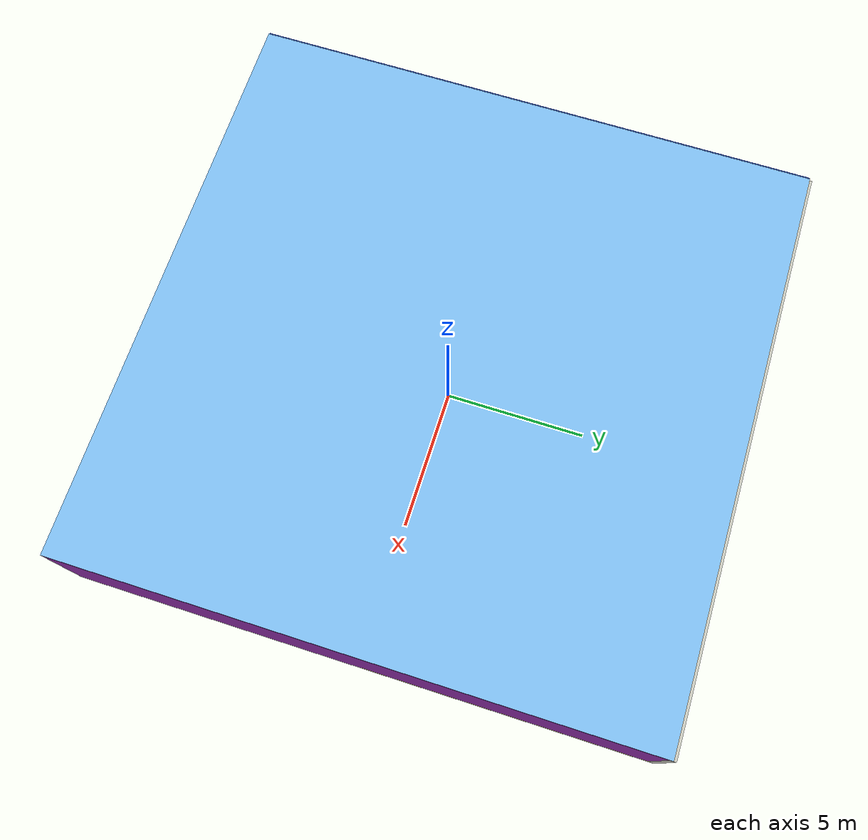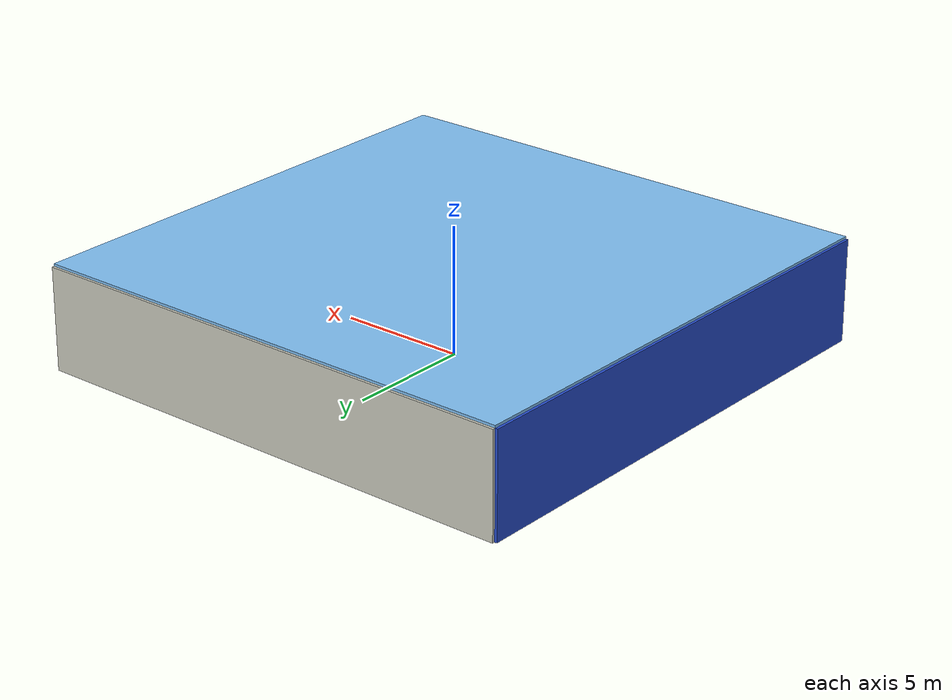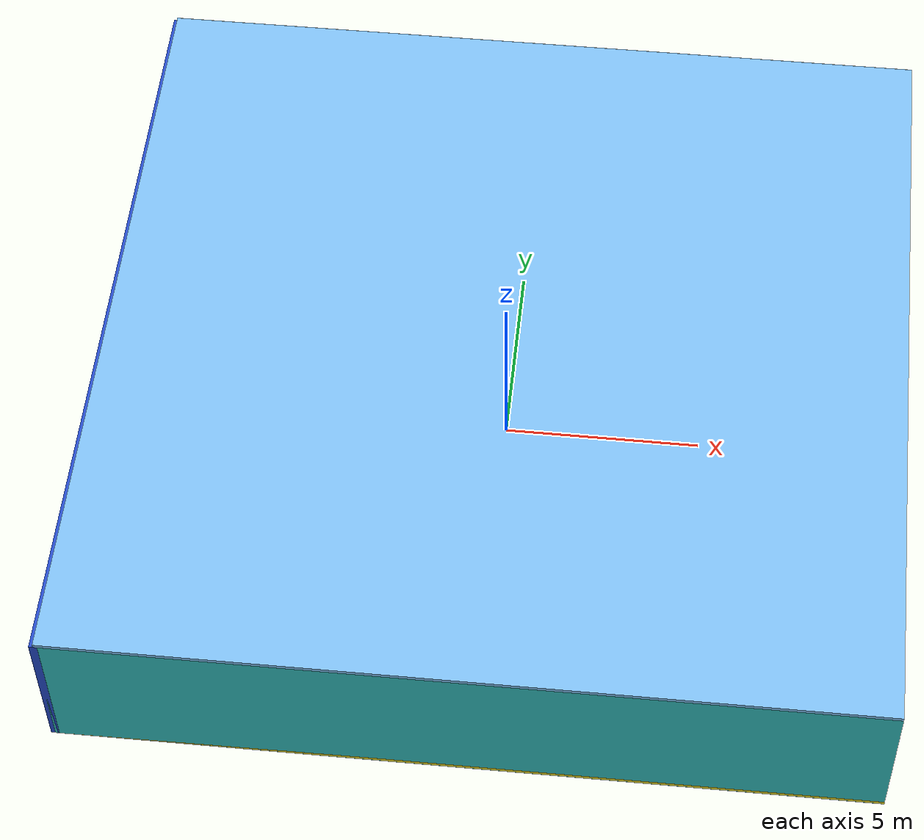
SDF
<sdf version="1.4">
 <world name="default">
  <physics type="ode">
   <max_step_size>0.001</max_step_size>
   <real_time_factor>1</real_time_factor>
   <real_time_update_rate>1000</real_time_update_rate>
   <gravity>0 0 -9.8</gravity>
  </physics>
  <scene><ambient>0.4 0.4 0.4 1</ambient><background>0.7 0.7 0.7 1</background><shadows>1</shadows></scene>
  <model name="Surrounding">
   <static>1</static>
   <link name="Ceiling">
    <collision name="Ceiling_Collision"><geometry><box><size>20 20 0.1</size></box></geometry></collision>
    <visual name="Ceiling_Visual">
     <geometry><box><size>20 20 0.1</size></box></geometry>
     <material>
      <script><uri>file://media/materials/scripts/gazebo.material</uri><name>Gazebo/SkyBlue</name></script>
     </material>
    </visual>
    <pose>0 0 4.05 0 0 0</pose>
   </link>
   <link name="Wall_South">
    <collision name="Wall_South_Collision">
     <geometry><box><size>20 0 4</size></box></geometry>
     <pose>0 0 2 0 -0 0</pose>
    </collision>
    <visual name="Wall_South_Visual">
     <pose>0 0 2 0 -0 0</pose>
     <geometry><box><size>20 0 4</size></box></geometry>
     <material>
      <script><uri>file://media/materials/scripts/gazebo.material</uri><name>Gazebo/TurquoiseGlow</name></script>
     </material>
    </visual>
    <velocity_decay><linear>0</linear><angular>0</angular></velocity_decay>
    <pose>0 -10 0 0 -0 0</pose>
   </link>
   <link name="Wall_East">
    <collision name="Wall_21_Collision">
     <geometry><box><size>20 0 4</size></box></geometry>
     <pose>0 0 2 0 -0 0</pose>
    </collision>
    <visual name="Wall_21_Visual">
     <pose>0 0 2 0 -0 0</pose>
     <geometry><box><size>20 0 4</size></box></geometry>
     <material>
      <script><uri>file://media/materials/scripts/gazebo.material</uri><name>Gazebo/Purple</name></script>
     </material>
    </visual>
    <velocity_decay><linear>0</linear><angular>0</angular></velocity_decay>
    <pose>10 0 0 0 -0 1.5708</pose>
   </link>
   <link name="Wall_North">
    <collision name="Wall_22_Collision">
     <geometry><box><size>20 0.2 4</size></box></geometry>
     <pose>0 0 2 0 -0 0</pose>
    </collision>
    <visual name="Wall_22_Visual">
     <pose>0 0 2 0 -0 0</pose>
     <geometry><box><size>20 0.2 4</size></box></geometry>
     <material>
      <script><uri>file://media/materials/scripts/gazebo.material</uri><name>Gazebo/PaintedWall</name></script>
     </material>
    </visual>
    <velocity_decay><linear>0</linear><angular>0</angular></velocity_decay>
    <pose>0 10 0 0 -0 0</pose>
   </link>
   <link name="Wall_West">
    <collision name="Wall_23_Collision">
     <geometry><box><size>20 0.2 4</size></box></geometry>
     <pose>0 0 2 0 -0 0</pose>
    </collision>
    <visual name="Wall_23_Visual">
     <pose>0 0 2 0 -0 0</pose>
     <geometry><box><size>20 0.2 4</size></box></geometry>
     <material>
      <script><uri>file://media/materials/scripts/gazebo.material</uri><name>Gazebo/BlueGlow</name></script>
     </material>
    </visual>
    <velocity_decay><linear>0</linear><angular>0</angular></velocity_decay>
    <pose>-10 0 0 0 0 -1.5708</pose>
   </link>
   <link name="Ground_link">
    <collision name="collision">
     <pose>0 0 .05 0 -0 0</pose>
     <geometry><box><size>20 20 0.1</size></box></geometry>
    </collision>
    <visual name="visual">
     <pose>0 0 .05 0 -0 0</pose>
     <geometry><box><size>20 20 0.1</size></box></geometry>
     <material>
      <script><uri>file://media/materials/scripts/gazebo.material</uri><name>Gazebo/Yellow</name></script>
     </material>
    </visual>
   </link>
   <static>1</static>
  </model>
  <spherical_coordinates>
   <surface_model>EARTH_WGS84</surface_model>
   <latitude_deg>0</latitude_deg>
   <longitude_deg>0</longitude_deg>
   <elevation>0</elevation>
   <heading_deg>0</heading_deg>
  </spherical_coordinates>
  <light name="lightball_0" type="diffuse">
   <diffuse>0.8 0.8 0.8 1</diffuse>
   <specular>0.2 0.2 0.2 1</specular>
   <attenuation>
    <range>100</range>
    <constant>0.7</constant>
    <linear>0.01</linear>
    <quadratic>0.001</quadratic>
   </attenuation>
   <direction>-0.5 0.1 -0.9</direction>
   <pose>6.93386151595 -7.32520887763 3.50987414356 0 0 0</pose>
  </light>
  <light name="lightball_1" type="diffuse">
   <diffuse>0.8 0.8 0.8 1</diffuse>
   <specular>0.2 0.2 0.2 1</specular>
   <attenuation>
    <range>100</range>
    <constant>0.7</constant>
    <linear>0.01</linear>
    <quadratic>0.001</quadratic>
   </attenuation>
   <direction>-0.5 0.1 -0.9</direction>
   <pose>-6.64027920697 4.41240398129 1.69266739915 0 0 0</pose>
  </light>
  <light name="lightball_2" type="diffuse">
   <diffuse>0.8 0.8 0.8 1</diffuse>
   <specular>0.2 0.2 0.2 1</specular>
   <attenuation>
    <range>100</range>
    <constant>0.7</constant>
    <linear>0.01</linear>
    <quadratic>0.001</quadratic>
   </attenuation>
   <direction>-0.5 0.1 -0.9</direction>
   <pose>-4.00944601478 -0.114027992166 3.8682417763 0 0 0</pose>
  </light>
  <light name="lightball_3" type="diffuse">
   <diffuse>0.8 0.8 0.8 1</diffuse>
   <specular>0.2 0.2 0.2 1</specular>
   <attenuation>
    <range>100</range>
    <constant>0.7</constant>
    <linear>0.01</linear>
    <quadratic>0.001</quadratic>
   </attenuation>
   <direction>-0.5 0.1 -0.9</direction>
   <pose>4.05623389581 8.71948714349 2.94626717675 0 0 0</pose>
  </light>
  <light name="lightball_4" type="diffuse">
   <diffuse>0.8 0.8 0.8 1</diffuse>
   <specular>0.2 0.2 0.2 1</specular>
   <attenuation>
    <range>100</range>
    <constant>0.7</constant>
    <linear>0.01</linear>
    <quadratic>0.001</quadratic>
   </attenuation>
   <direction>-0.5 0.1 -0.9</direction>
   <pose>5.66664117796 3.40009592267 1.19312673245 0 0 0</pose>
  </light>
  <light name="lightball_5" type="diffuse">
   <diffuse>0.8 0.8 0.8 1</diffuse>
   <specular>0.2 0.2 0.2 1</specular>
   <attenuation>
    <range>100</range>
    <constant>0.7</constant>
    <linear>0.01</linear>
    <quadratic>0.001</quadratic>
   </attenuation>
   <direction>-0.5 0.1 -0.9</direction>
   <pose>7.28377371571 0.961921686428 0.66908041564 0 0 0</pose>
  </light>
  <light name="lightball_6" type="diffuse">
   <diffuse>0.8 0.8 0.8 1</diffuse>
   <specular>0.2 0.2 0.2 1</specular>
   <attenuation>
    <range>100</range>
    <constant>0.7</constant>
    <linear>0.01</linear>
    <quadratic>0.001</quadratic>
   </attenuation>
   <direction>-0.5 0.1 -0.9</direction>
   <pose>-1.13125794227 -0.448429634476 1.74348278547 0 0 0</pose>
  </light>
  <light name="lightball_7" type="diffuse">
   <diffuse>0.8 0.8 0.8 1</diffuse>
   <specular>0.2 0.2 0.2 1</specular>
   <attenuation>
    <range>100</range>
    <constant>0.7</constant>
    <linear>0.01</linear>
    <quadratic>0.001</quadratic>
   </attenuation>
   <direction>-0.5 0.1 -0.9</direction>
   <pose>0.141105233667 -8.16536765725 0.831810366461 0 0 0</pose>
  </light>
  <light name="lightball_8" type="diffuse">
   <diffuse>0.8 0.8 0.8 1</diffuse>
   <specular>0.2 0.2 0.2 1</specular>
   <attenuation>
    <range>100</range>
    <constant>0.7</constant>
    <linear>0.01</linear>
    <quadratic>0.001</quadratic>
   </attenuation>
   <direction>-0.5 0.1 -0.9</direction>
   <pose>4.86255472358 -2.62318160339 1.89008824956 0 0 0</pose>
  </light>
  <light name="lightball_9" type="diffuse">
   <diffuse>0.8 0.8 0.8 1</diffuse>
   <specular>0.2 0.2 0.2 1</specular>
   <attenuation>
    <range>100</range>
    <constant>0.7</constant>
    <linear>0.01</linear>
    <quadratic>0.001</quadratic>
   </attenuation>
   <direction>-0.5 0.1 -0.9</direction>
   <pose>-6.45614054265 9.91081167336 1.69259304591 0 0 0</pose>
  </light>
  <light name="lightball_10" type="diffuse">
   <diffuse>0.8 0.8 0.8 1</diffuse>
   <specular>0.2 0.2 0.2 1</specular>
   <attenuation>
    <range>100</range>
    <constant>0.7</constant>
    <linear>0.01</linear>
    <quadratic>0.001</quadratic>
   </attenuation>
   <direction>-0.5 0.1 -0.9</direction>
   <pose>-8.47423588644 -8.91873425983 2.17445811327 0 0 0</pose>
  </light>
  <light name="lightball_11" type="diffuse">
   <diffuse>0.8 0.8 0.8 1</diffuse>
   <specular>0.2 0.2 0.2 1</specular>
   <attenuation>
    <range>100</range>
    <constant>0.7</constant>
    <linear>0.01</linear>
    <quadratic>0.001</quadratic>
   </attenuation>
   <direction>-0.5 0.1 -0.9</direction>
   <pose>2.1096794588 -5.84906512225 1.3267210356 0 0 0</pose>
  </light>
  <include>
   <uri>model://robocup_3Dsim_goal</uri>
   <pose>1.73862732344 -8.21451468208 0 0 0 0.405434963331</pose>
  </include>
  <include><uri>model://table</uri><pose>1.21081143862 0.80123587897 0 0 0 2.67441002</pose></include>
  <include>
   <uri>model://textured_shapes</uri>
   <pose>5.15379308638 5.10351551891 0 0 0 0.0832268205882</pose>
  </include>
  <include><uri>model://cabinet</uri><pose>5.00269696321 6.73095820978 0 0 0 2.32335878824</pose></include>
  <include>
   <uri>model://robocup_3Dsim_goal</uri>
   <pose>7.62785864863 -7.43007436184 0 0 0 2.88992742736</pose>
  </include>
  <include>
   <uri>model://robocup_3Dsim_goal</uri>
   <pose>7.85460347856 -4.63968441954 0 0 0 3.04227121514</pose>
  </include>
  <include><uri>model://table</uri><pose>8.20158291836 7.16597641479 0 0 0 1.31849947931</pose></include>
 </world>
</sdf>

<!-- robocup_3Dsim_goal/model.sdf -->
<sdf version="1.5">
  <model name="robocup_3d_goal">
    <static>true</static>
    <link name="left_post">
      <pose>0 1.05 0.45 0 0 0</pose>
      <collision name="collision">
        <geometry>
          <cylinder>
            <radius>0.05</radius>
            <length>0.9</length>
          </cylinder>
        </geometry>
      </collision>
      <visual name="visual">
        <geometry>
          <cylinder>
            <radius>0.05</radius>
            <length>0.9</length>
          </cylinder>
        </geometry>
        <material>
          <script>
            <uri>file://media/materials/scripts/gazebo.material</uri>
            <name>Gazebo/ZincYellow</name>
          </script>
        </material>
      </visual>
    </link>
    <link name="left_support_horiz_lower">
      <pose>0.30 1.05 0.01 0 0 0</pose>
      <collision name="collision">
        <geometry>
          <box>
            <size>0.50 0.02 0.02</size>
          </box>
        </geometry>
      </collision>
      <visual name="visual">
        <geometry>
          <box>
            <size>0.50 0.02 0.02</size>
          </box>
        </geometry>
        <material>
          <script>
            <uri>file://media/materials/scripts/gazebo.material</uri>
            <name>Gazebo/White</name>
          </script>
        </material>
      </visual>
    </link>
    <link name="left_support_horiz_upper">
      <pose>0.30 1.05 0.79 0 0 0</pose>
      <collision name="collision">
        <geometry>
          <box>
            <size>0.50 0.02 0.02</size>
          </box>
        </geometry>
      </collision>
      <visual name="visual">
        <geometry>
          <box>
            <size>0.50 0.02 0.02</size>
          </box>
        </geometry>
        <material>
          <script>
            <uri>file://media/materials/scripts/gazebo.material</uri>
            <name>Gazebo/White</name>
          </script>
        </material>
      </visual>
    </link>
    <link name="left_support_vertical">
      <pose>0.56 1.05 0.4 0 1.5708 0</pose>
      <collision name="collision">
        <geometry>
          <box>
            <size>0.80 0.02 0.02</size>
          </box>
        </geometry>
      </collision>
      <visual name="visual">
        <geometry>
          <box>
            <size>0.80 0.02 0.02</size>
          </box>
        </geometry>
        <material>
          <script>
            <uri>file://media/materials/scripts/gazebo.material</uri>
            <name>Gazebo/White</name>
          </script>
        </material>
      </visual>
    </link>
    <link name="right_support_horiz_lower">
      <pose>0.30 -1.05 0.01 0 0 0</pose>
      <collision name="collision">
        <geometry>
          <box>
            <size>0.50 0.02 0.02</size>
          </box>
        </geometry>
      </collision>
      <visual name="visual">
        <geometry>
          <box>
            <size>0.50 0.02 0.02</size>
          </box>
        </geometry>
        <material>
          <script>
            <uri>file://media/materials/scripts/gazebo.material</uri>
            <name>Gazebo/White</name>
          </script>
        </material>
      </visual>
    </link>
    <link name="right_support_horiz_upper">
      <pose>0.30 -1.05 0.79 0 0 0</pose>
      <collision name="collision">
        <geometry>
          <box>
            <size>0.50 0.02 0.02</size>
          </box>
        </geometry>
      </collision>
      <visual name="visual">
        <geometry>
          <box>
            <size>0.50 0.02 0.02</size>
          </box>
        </geometry>
        <material>
          <script>
            <uri>file://media/materials/scripts/gazebo.material</uri>
            <name>Gazebo/White</name>
          </script>
        </material>
      </visual>
    </link>
    <link name="right_support_vertical">
      <pose>0.56 -1.05 0.4 0 1.5708 0</pose>
      <collision name="collision">
        <geometry>
          <box>
            <size>0.80 0.02 0.02</size>
          </box>
        </geometry>
      </collision>
      <visual name="visual">
        <geometry>
          <box>
            <size>0.80 0.02 0.02</size>
          </box>
        </geometry>
        <material>
          <script>
            <uri>file://media/materials/scripts/gazebo.material</uri>
            <name>Gazebo/White</name>
          </script>
        </material>
      </visual>
    </link>
    <link name="center_support_horiz_lower">
      <pose>0.56 0 0.01 0 1.5708 0</pose>
      <collision name="collision">
        <geometry>
          <box>
            <size>0.02 2.08 0.02</size>
          </box>
        </geometry>
      </collision>
      <visual name="visual">
        <geometry>
          <box>
            <size>0.02 2.08 0.02</size>
          </box>
        </geometry>
        <material>
          <script>
            <uri>file://media/materials/scripts/gazebo.material</uri>
            <name>Gazebo/White</name>
          </script>
        </material>
      </visual>
    </link>
    <link name="center_support_horiz_upper">
      <pose>0.56 0 0.79 0 1.5708 0</pose>
      <collision name="collision">
        <geometry>
          <box>
            <size>0.02 2.08 0.02</size>
          </box>
        </geometry>
      </collision>
      <visual name="visual">
        <geometry>
          <box>
            <size>0.02 2.08 0.02</size>
          </box>
        </geometry>
        <material>
          <script>
            <uri>file://media/materials/scripts/gazebo.material</uri>
            <name>Gazebo/White</name>
          </script>
        </material>
      </visual>
    </link>
    <link name="right_post">
      <pose>0 -1.05 0.45 0 0 0</pose>
      <collision name="collision">
        <geometry>
          <cylinder>
            <radius>0.05</radius>
            <length>0.9</length>
          </cylinder>
        </geometry>
      </collision>
      <visual name="visual">
        <geometry>
          <cylinder>
            <radius>0.05</radius>
            <length>0.9</length>
          </cylinder>
        </geometry>
        <material>
          <script>
            <uri>file://media/materials/scripts/gazebo.material</uri>
            <name>Gazebo/ZincYellow</name>
          </script>
        </material>
      </visual>
    </link>
    <link name="crossbar">
      <pose>0 0 0.85 1.57 1.57 0</pose>
      <collision name="collision">
        <geometry>
          <cylinder>
            <radius>0.05</radius>
            <length>2.0</length>
          </cylinder>
        </geometry>
      </collision>
      <visual name="visual">
        <geometry>
          <cylinder>
            <radius>0.05</radius>
            <length>2.0</length>
          </cylinder>
        </geometry>
        <material>
          <script>
            <uri>file://media/materials/scripts/gazebo.material</uri>
            <name>Gazebo/ZincYellow</name>
          </script>
        </material>
      </visual>
    </link>
    <link name="center_net">
      <pose>0.56 0 0.40 0 0 0</pose>
      <collision name="collision">
        <geometry>
          <box>
            <size>0.01 2.1 0.80</size>
          </box>
        </geometry>
      </collision>
      <visual name="visual">
        <geometry>
          <box>
            <size>0.01 2.1 0.80</size>
          </box>
        </geometry>
        <material>
          <script>
            <uri>model://../model_source/models/robocup09_spl_field/materials/scripts/</uri>
            <uri>model://../model_source/models/robocup09_spl_field/materials/textures/</uri>
            <name>RoboCup/Net</name>
          </script>
        </material>
      </visual>
    </link>
    <link name="left_net">
      <pose>0.30 1.05 0.40 0 0 0</pose>
      <collision name="collision">
        <geometry>
          <box>
            <size>0.50 0.01 0.76</size>
          </box>
        </geometry>
      </collision>
      <visual name="visual">
        <geometry>
          <box>
            <size>0.50 0.01 0.76</size>
          </box>
        </geometry>
        <material>
          <script>
            <uri>model://../model_source/models/robocup09_spl_field/materials/scripts/</uri>
            <uri>model://../model_source/models/robocup09_spl_field/materials/textures/</uri>
            <name>RoboCup/Net</name>
          </script>
        </material>
      </visual>
    </link>
    <link name="right_net">
      <pose>0.30 -1.05 0.40 0 0 0</pose>
      <collision name="collision">
        <geometry>
          <box>
            <size>0.50 0.01 0.76</size>
          </box>
        </geometry>
      </collision>
      <visual name="visual">
        <geometry>
          <box>
            <size>0.50 0.01 0.76</size>
          </box>
        </geometry>
        <material>
          <script>
            <uri>model://../model_source/models/robocup09_spl_field/materials/scripts/</uri>
            <uri>model://../model_source/models/robocup09_spl_field/materials/textures/</uri>
            <name>RoboCup/Net</name>
          </script>
        </material>
      </visual>
    </link>
  </model>
</sdf>

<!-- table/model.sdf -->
<sdf version="1.5">
  <model name="table">
    <static>true</static>
    <link name="link">
      <collision name="surface">
        <pose>0 0 1.0 0 0 0</pose>
        <geometry>
          <box>
            <size>1.5 0.8 0.03</size>
          </box>
        </geometry>
        <surface>
          <friction>
            <ode>
              <mu>0.6</mu>
              <mu2>0.6</mu2>
            </ode>
          </friction>
        </surface>
      </collision>
      <visual name="visual1">
        <pose>0 0 1.0 0 0 0</pose>
        <geometry>
          <box>
            <size>1.5 0.8 0.03</size>
          </box>
        </geometry>
        <material>
          <script>
            <uri>model://media/materials/scripts/gazebo.material</uri>
            <name>Gazebo/Wood</name>
          </script>
        </material>
      </visual>
      <collision name="front_left_leg">
        <pose>0.68 0.38 0.5 0 0 0</pose>
        <geometry>
          <cylinder>
            <radius>0.02</radius>
            <length>1.0</length>
          </cylinder>
        </geometry>
      </collision>
      <visual name="front_left_leg">
        <pose>0.68 0.38 0.5 0 0 0</pose>
        <geometry>
          <cylinder>
            <radius>0.02</radius>
            <length>1.0</length>
          </cylinder>
        </geometry>
        <material>
          <script>
            <uri>model://media/materials/scripts/gazebo.material</uri>
            <name>Gazebo/Grey</name>
          </script>
        </material>
      </visual>
      <collision name="front_right_leg">
        <pose>0.68 -0.38 0.5 0 0 0</pose>
        <geometry>
          <cylinder>
            <radius>0.02</radius>
            <length>1.0</length>
          </cylinder>
        </geometry>
      </collision>
      <visual name="front_right_leg">
        <pose>0.68 -0.38 0.5 0 0 0</pose>
        <geometry>
          <cylinder>
            <radius>0.02</radius>
            <length>1.0</length>
          </cylinder>
        </geometry>
        <material>
          <script>
            <uri>model://media/materials/scripts/gazebo.material</uri>
            <name>Gazebo/Grey</name>
          </script>
        </material>
      </visual>
      <collision name="back_right_leg">
        <pose>-0.68 -0.38 0.5 0 0 0</pose>
        <geometry>
          <cylinder>
            <radius>0.02</radius>
            <length>1.0</length>
          </cylinder>
        </geometry>
      </collision>
      <visual name="back_right_leg">
        <pose>-0.68 -0.38 0.5 0 0 0</pose>
        <geometry>
          <cylinder>
            <radius>0.02</radius>
            <length>1.0</length>
          </cylinder>
        </geometry>
        <material>
          <script>
            <uri>model://media/materials/scripts/gazebo.material</uri>
            <name>Gazebo/Grey</name>
          </script>
        </material>
      </visual>
      <collision name="back_left_leg">
        <pose>-0.68 0.38 0.5 0 0 0</pose>
        <geometry>
          <cylinder>
            <radius>0.02</radius>
            <length>1.0</length>
          </cylinder>
        </geometry>
      </collision>
      <visual name="back_left_leg">
        <pose>-0.68 0.38 0.5 0 0 0</pose>
        <geometry>
          <cylinder>
            <radius>0.02</radius>
            <length>1.0</length>
          </cylinder>
        </geometry>
        <material>
          <script>
            <uri>model://media/materials/scripts/gazebo.material</uri>
            <name>Gazebo/Grey</name>
          </script>
        </material>
      </visual>
    </link>
  </model>
</sdf>

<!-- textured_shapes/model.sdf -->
<sdf version="1.6">
  <model name="textured_shapes">
    <pose>0 0 0.5 0 0 0</pose>
    <link name="box">
      <pose>0 -1.5 0 0 0 0</pose>
      <collision name="collision">
        <geometry>
          <box>
            <size>1 1 1</size>
          </box>
        </geometry>
      </collision>
      <visual name="visual">
        <geometry>
          <box>
            <size>1 1 1</size>
          </box>
        </geometry>
        <material>
          <script>
            <uri>model://../model_source/models/textured_shapes/materials/scripts</uri>
            <uri>model://../model_source/models/textured_shapes/materials/textures</uri>
            <name>TexturedShape/Squares</name>
          </script>
        </material>
      </visual>
    </link>
    <link name="sphere">
      <collision name="collision">
        <geometry>
          <sphere>
            <radius>0.5</radius>
          </sphere>
        </geometry>
      </collision>
      <visual name="visual">
        <geometry>
          <sphere>
            <radius>0.5</radius>
          </sphere>
        </geometry>
        <material>
          <script>
            <uri>model://../model_source/models/textured_shapes/materials/scripts</uri>
            <uri>model://../model_source/models/textured_shapes/materials/textures</uri>
            <name>TexturedShape/Squares</name>
          </script>
        </material>
      </visual>
    </link>
    <link name="cylinder">
      <pose>0 1.5 0 0 0 0</pose>
      <collision name="collision">
        <geometry>
          <cylinder>
            <radius>0.5</radius>
            <length>1</length>
          </cylinder>
        </geometry>
      </collision>
      <visual name="visual">
        <geometry>
          <cylinder>
            <radius>0.5</radius>
            <length>1</length>
          </cylinder>
        </geometry>
        <material>
          <script>
            <uri>model://../model_source/models/textured_shapes/materials/scripts</uri>
            <uri>model://../model_source/models/textured_shapes/materials/textures</uri>
            <name>TexturedShape/Squares</name>
          </script>
        </material>
      </visual>
    </link>
  </model>
</sdf>

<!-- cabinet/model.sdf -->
<sdf version="1.5">
  <model name="cabinet">
    <static>true</static>
    <link name="cabinet_bottom_plate">
      <inertial>
        <pose>0 0 -1 0 0 0</pose>
        <inertia>
          <ixx>2.050000</ixx>
          <ixy>0</ixy>
          <ixz>0</ixz>
          <iyy>2.050000</iyy>
          <iyz>0</iyz>
          <izz>2.050000</izz>
        </inertia>
        <mass>25.000000</mass>
      </inertial>
      <collision name="cabinet_bottom_plate_geom">
        <pose>0 0 0.010000 0 0 0</pose>
        <geometry>
          <box>
            <size>0.450000 0.450000 0.020000</size>
          </box>
        </geometry>
      </collision>
      <visual name="cabinet_bottom_plate_geom_visual">
        <pose>0 0 0.010000 0 0 0</pose>
        <geometry>
          <box>
            <size>0.450000 0.450000 0.020000</size>
          </box>
        </geometry>
        <material>
          <script>
            <uri>model://media/materials/scripts/gazebo.material</uri>
            <name>Gazebo/Wood</name>
          </script>
        </material>
      </visual>
      <collision name="cabinet_bottom_plate_geom_cabinet_back_plate">
        <pose>0.235000 0 0.510000 0 0 0</pose>
        <geometry>
          <box>
            <size>0.020000 0.450000 1.020000</size>
          </box>
        </geometry>
      </collision>
      <visual name="cabinet_bottom_plate_geom_cabinet_back_plate_visual">
        <pose>0.235000 0 0.510000 0 0 0</pose>
        <geometry>
          <box>
            <size>0.020000 0.450000 1.020000</size>
          </box>
        </geometry>
        <material>
          <script>
            <uri>model://media/materials/scripts/gazebo.material</uri>
            <name>Gazebo/Wood</name>
          </script>
        </material>
      </visual>
      <collision name="cabinet_bottom_plate_geom_cabinet_left_plate">
        <pose>0 0.235000 0.510000 0 0 0</pose>
        <geometry>
          <box>
            <size>0.450000 0.020000 1.020000</size>
          </box>
        </geometry>
      </collision>
      <visual name="cabinet_bottom_plate_geom_cabinet_left_plate_visual">
        <pose>0 0.235000 0.510000 0 0 0</pose>
        <geometry>
          <box>
            <size>0.450000 0.020000 1.020000</size>
          </box>
        </geometry>
        <material>
          <script>
            <uri>model://media/materials/scripts/gazebo.material</uri>
            <name>Gazebo/Wood</name>
          </script>
        </material>
      </visual>
      <collision name="cabinet_bottom_plate_geom_cabinet_middle_plate">
        <pose>0 0 0.510000 0 0 0</pose>
        <geometry>
          <box>
            <size>0.450000 0.450000 0.020000</size>
          </box>
        </geometry>
      </collision>
      <visual name="cabinet_bottom_plate_geom_cabinet_middle_plate_visual">
        <pose>0 0 0.510000 0 0 0</pose>
        <geometry>
          <box>
            <size>0.450000 0.450000 0.020000</size>
          </box>
        </geometry>
        <material>
          <script>
            <uri>model://media/materials/scripts/gazebo.material</uri>
            <name>Gazebo/Wood</name>
          </script>
        </material>
      </visual>
      <collision name="cabinet_bottom_plate_geom_cabinet_right_plate">
        <pose>0 -0.235000 0.510000 0 0 0</pose>
        <geometry>
          <box>
            <size>0.450000 0.020000 1.020000</size>
          </box>
        </geometry>
      </collision>
      <visual name="cabinet_bottom_plate_geom_cabinet_right_plate_visual">
        <pose>0 -0.235000 0.510000 0 0 0</pose>
        <geometry>
          <box>
            <size>0.450000 0.020000 1.020000</size>
          </box>
        </geometry>
        <material>
          <script>
            <uri>model://media/materials/scripts/gazebo.material</uri>
            <name>Gazebo/Wood</name>
          </script>
        </material>
      </visual>
      <collision name="cabinet_bottom_plate_geom_cabinet_top_plate">
        <pose>0 0 1.010000 0 0 0</pose>
        <geometry>
          <box>
            <size>0.450000 0.450000 0.020000</size>
          </box>
        </geometry>
      </collision>
      <visual name="cabinet_bottom_plate_geom_cabinet_top_plate_visual">
        <pose>0 0 1.010000 0 0 0</pose>
        <geometry>
          <box>
            <size>0.450000 0.450000 0.020000</size>
          </box>
        </geometry>
        <material>
          <script>
            <uri>model://media/materials/scripts/gazebo.material</uri>
            <name>Gazebo/Wood</name>
          </script>
        </material>
      </visual>
    </link>
  </model>
</sdf>
